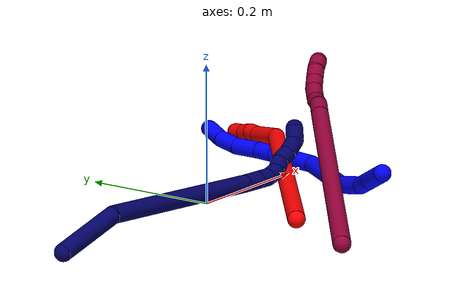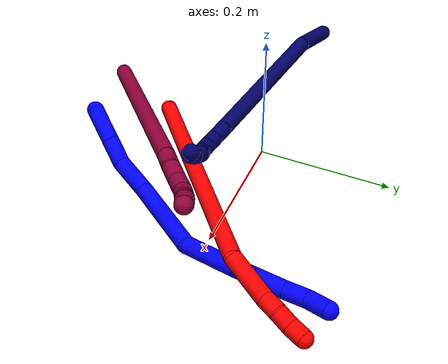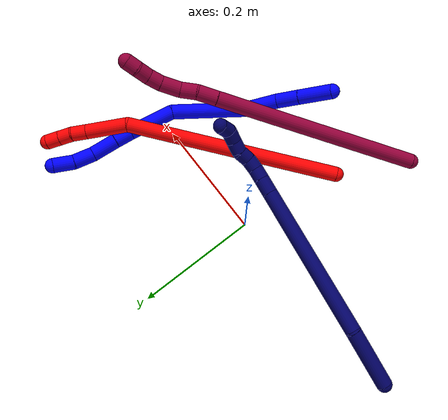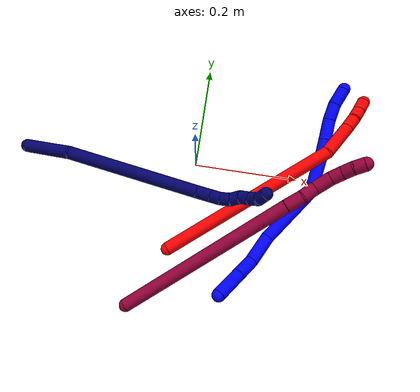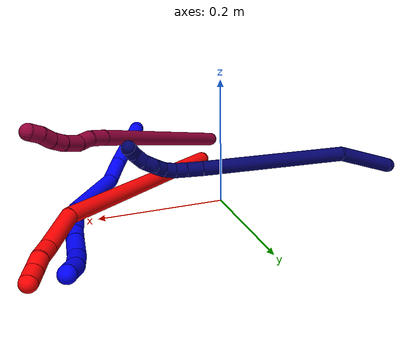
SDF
<sdf version="1.7">
 <world name="default">
  <model name="1">
   <static>0</static>
   <link name="1">
    <collision name="collision-cylinder-e_1_1_4">
     <pose>0.015704 0.009625 0.021722 -0.417123 0.584045 -0.127073</pose>
     <geometry><cylinder><radius>0.0125</radius><length>0.056959</length></cylinder></geometry>
     <surface>
      <friction><ode><mu>1.16</mu><mu2>1.16</mu2><slip1>0</slip1><slip2>0</slip2></ode></friction>
      <contact><ode><kp>1e+06</kp><kd>1</kd><max_vel>0</max_vel><min_depth>0.001</min_depth></ode></contact>
     </surface>
    </collision>
    <visual name="visual-cylinder-e_1_1_4">
     <pose>0.015704 0.009625 0.021722 -0.417123 0.584045 -0.127073</pose>
     <geometry><cylinder><radius>0.0125</radius><length>0.056959</length></cylinder></geometry>
     <material><ambient>0 0 1 1</ambient></material>
    </visual>
    <collision name="collision-cylinder-e_2_4_5">
     <pose>0.042186 0.025967 0.05838 -0.422554 0.582062 -0.128311</pose>
     <geometry><cylinder><radius>0.0125</radius><length>0.039211</length></cylinder></geometry>
     <surface>
      <friction><ode><mu>1.16</mu><mu2>1.16</mu2><slip1>0</slip1><slip2>0</slip2></ode></friction>
      <contact><ode><kp>1e+06</kp><kd>1</kd><max_vel>0</max_vel><min_depth>0.001</min_depth></ode></contact>
     </surface>
    </collision>
    <visual name="visual-cylinder-e_2_4_5">
     <pose>0.042186 0.025967 0.05838 -0.422554 0.582062 -0.128311</pose>
     <geometry><cylinder><radius>0.0125</radius><length>0.039211</length></cylinder></geometry>
     <material><ambient>0 0 1 1</ambient></material>
    </visual>
    <collision name="collision-cylinder-e_3_5_6">
     <pose>0.063417 0.039149 0.09917 -0.245057 0.373808 -0.046568</pose>
     <geometry><cylinder><radius>0.0125</radius><length>0.057253</length></cylinder></geometry>
     <surface>
      <friction><ode><mu>1.16</mu><mu2>1.16</mu2><slip1>0</slip1><slip2>0</slip2></ode></friction>
      <contact><ode><kp>1e+06</kp><kd>1</kd><max_vel>0</max_vel><min_depth>0.001</min_depth></ode></contact>
     </surface>
    </collision>
    <visual name="visual-cylinder-e_3_5_6">
     <pose>0.063417 0.039149 0.09917 -0.245057 0.373808 -0.046568</pose>
     <geometry><cylinder><radius>0.0125</radius><length>0.057253</length></cylinder></geometry>
     <material><ambient>0 0 1 1</ambient></material>
    </visual>
    <collision name="collision-cylinder-e_4_6_7">
     <pose>0.100099 0.043506 0.181559 0.037279 0.434113 0.008222</pose>
     <geometry><cylinder><radius>0.0125</radius><length>0.124719</length></cylinder></geometry>
     <surface>
      <friction><ode><mu>1.16</mu><mu2>1.16</mu2><slip1>0</slip1><slip2>0</slip2></ode></friction>
      <contact><ode><kp>1e+06</kp><kd>1</kd><max_vel>0</max_vel><min_depth>0.001</min_depth></ode></contact>
     </surface>
    </collision>
    <visual name="visual-cylinder-e_4_6_7">
     <pose>0.100099 0.043506 0.181559 0.037279 0.434113 0.008222</pose>
     <geometry><cylinder><radius>0.0125</radius><length>0.124719</length></cylinder></geometry>
     <material><ambient>0 0 1 1</ambient></material>
    </visual>
    <collision name="collision-cylinder-e_5_7_8">
     <pose>0.126458 0.046406 0.277343 -0.126934 0.003301 -0.00021</pose>
     <geometry><cylinder><radius>0.0125</radius><length>0.079133</length></cylinder></geometry>
     <surface>
      <friction><ode><mu>1.16</mu><mu2>1.16</mu2><slip1>0</slip1><slip2>0</slip2></ode></friction>
      <contact><ode><kp>1e+06</kp><kd>1</kd><max_vel>0</max_vel><min_depth>0.001</min_depth></ode></contact>
     </surface>
    </collision>
    <visual name="visual-cylinder-e_5_7_8">
     <pose>0.126458 0.046406 0.277343 -0.126934 0.003301 -0.00021</pose>
     <geometry><cylinder><radius>0.0125</radius><length>0.079133</length></cylinder></geometry>
     <material><ambient>0 0 1 1</ambient></material>
    </visual>
    <collision name="collision-cylinder-e_6_8_9">
     <pose>0.125971 0.053358 0.330858 -0.135357 -0.042856 0.002905</pose>
     <geometry><cylinder><radius>0.0125</radius><length>0.028823</length></cylinder></geometry>
     <surface>
      <friction><ode><mu>1.16</mu><mu2>1.16</mu2><slip1>0</slip1><slip2>0</slip2></ode></friction>
      <contact><ode><kp>1e+06</kp><kd>1</kd><max_vel>0</max_vel><min_depth>0.001</min_depth></ode></contact>
     </surface>
    </collision>
    <visual name="visual-cylinder-e_6_8_9">
     <pose>0.125971 0.053358 0.330858 -0.135357 -0.042856 0.002905</pose>
     <geometry><cylinder><radius>0.0125</radius><length>0.028823</length></cylinder></geometry>
     <material><ambient>0 0 1 1</ambient></material>
    </visual>
    <collision name="collision-cylinder-e_7_9_10">
     <pose>0.124458 0.059384 0.366718 -0.186907 -0.040745 0.003819</pose>
     <geometry><cylinder><radius>0.0125</radius><length>0.04399</length></cylinder></geometry>
     <surface>
      <friction><ode><mu>1.16</mu><mu2>1.16</mu2><slip1>0</slip1><slip2>0</slip2></ode></friction>
      <contact><ode><kp>1e+06</kp><kd>1</kd><max_vel>0</max_vel><min_depth>0.001</min_depth></ode></contact>
     </surface>
    </collision>
    <visual name="visual-cylinder-e_7_9_10">
     <pose>0.124458 0.059384 0.366718 -0.186907 -0.040745 0.003819</pose>
     <geometry><cylinder><radius>0.0125</radius><length>0.04399</length></cylinder></geometry>
     <material><ambient>0 0 1 1</ambient></material>
    </visual>
    <collision name="collision-cylinder-e_8_10_11">
     <pose>0.123182 0.063318 0.405667 0.008663 -0.021902 -9.5e-05</pose>
     <geometry><cylinder><radius>0.0125</radius><length>0.03472</length></cylinder></geometry>
     <surface>
      <friction><ode><mu>1.16</mu><mu2>1.16</mu2><slip1>0</slip1><slip2>0</slip2></ode></friction>
      <contact><ode><kp>1e+06</kp><kd>1</kd><max_vel>0</max_vel><min_depth>0.001</min_depth></ode></contact>
     </surface>
    </collision>
    <visual name="visual-cylinder-e_8_10_11">
     <pose>0.123182 0.063318 0.405667 0.008663 -0.021902 -9.5e-05</pose>
     <geometry><cylinder><radius>0.0125</radius><length>0.03472</length></cylinder></geometry>
     <material><ambient>0 0 1 1</ambient></material>
    </visual>
    <collision name="collision-cylinder-e_9_11_2">
     <pose>0.125063 0.059958 0.440175 0.184983 0.128869 0.01197</pose>
     <geometry><cylinder><radius>0.0125</radius><length>0.035193</length></cylinder></geometry>
     <surface>
      <friction><ode><mu>1.16</mu><mu2>1.16</mu2><slip1>0</slip1><slip2>0</slip2></ode></friction>
      <contact><ode><kp>1e+06</kp><kd>1</kd><max_vel>0</max_vel><min_depth>0.001</min_depth></ode></contact>
     </surface>
    </collision>
    <visual name="visual-cylinder-e_9_11_2">
     <pose>0.125063 0.059958 0.440175 0.184983 0.128869 0.01197</pose>
     <geometry><cylinder><radius>0.0125</radius><length>0.035193</length></cylinder></geometry>
     <material><ambient>0 0 1 1</ambient></material>
    </visual>
    <collision name="collision-sphere-2">
     <pose>0.127324 0.056748 0.457327 0 -0 0</pose>
     <geometry><sphere><radius>0.0125</radius></sphere></geometry>
     <surface>
      <friction><ode><mu>1.16</mu><mu2>1.16</mu2><slip1>0</slip1><slip2>0</slip2></ode></friction>
      <contact><ode><kp>1e+06</kp><kd>1</kd><max_vel>0</max_vel><min_depth>0.001</min_depth></ode></contact>
     </surface>
    </collision>
    <visual name="visual-sphere-2">
     <pose>0.127324 0.056748 0.457327 0 -0 0</pose>
     <geometry><sphere><radius>0.0125</radius></sphere></geometry>
     <material><ambient>0 0 1 1</ambient></material>
    </visual>
    <collision name="collision-sphere-11">
     <pose>0.122802 0.063167 0.423022 0 -0 0</pose>
     <geometry><sphere><radius>0.0125</radius></sphere></geometry>
     <surface>
      <friction><ode><mu>1.16</mu><mu2>1.16</mu2><slip1>0</slip1><slip2>0</slip2></ode></friction>
      <contact><ode><kp>1e+06</kp><kd>1</kd><max_vel>0</max_vel><min_depth>0.001</min_depth></ode></contact>
     </surface>
    </collision>
    <visual name="visual-sphere-11">
     <pose>0.122802 0.063167 0.423022 0 -0 0</pose>
     <geometry><sphere><radius>0.0125</radius></sphere></geometry>
     <material><ambient>0 0 1 1</ambient></material>
    </visual>
    <collision name="collision-sphere-10">
     <pose>0.123562 0.063468 0.388312 0 -0 0</pose>
     <geometry><sphere><radius>0.0125</radius></sphere></geometry>
     <surface>
      <friction><ode><mu>1.16</mu><mu2>1.16</mu2><slip1>0</slip1><slip2>0</slip2></ode></friction>
      <contact><ode><kp>1e+06</kp><kd>1</kd><max_vel>0</max_vel><min_depth>0.001</min_depth></ode></contact>
     </surface>
    </collision>
    <visual name="visual-sphere-10">
     <pose>0.123562 0.063468 0.388312 0 -0 0</pose>
     <geometry><sphere><radius>0.0125</radius></sphere></geometry>
     <material><ambient>0 0 1 1</ambient></material>
    </visual>
    <collision name="collision-sphere-9">
     <pose>0.125354 0.055301 0.345124 0 -0 0</pose>
     <geometry><sphere><radius>0.0125</radius></sphere></geometry>
     <surface>
      <friction><ode><mu>1.16</mu><mu2>1.16</mu2><slip1>0</slip1><slip2>0</slip2></ode></friction>
      <contact><ode><kp>1e+06</kp><kd>1</kd><max_vel>0</max_vel><min_depth>0.001</min_depth></ode></contact>
     </surface>
    </collision>
    <visual name="visual-sphere-9">
     <pose>0.125354 0.055301 0.345124 0 -0 0</pose>
     <geometry><sphere><radius>0.0125</radius></sphere></geometry>
     <material><ambient>0 0 1 1</ambient></material>
    </visual>
    <collision name="collision-sphere-4">
     <pose>0.031407 0.019251 0.043443 0 -0 0</pose>
     <geometry><sphere><radius>0.0125</radius></sphere></geometry>
     <surface>
      <friction><ode><mu>1.16</mu><mu2>1.16</mu2><slip1>0</slip1><slip2>0</slip2></ode></friction>
      <contact><ode><kp>1e+06</kp><kd>1</kd><max_vel>0</max_vel><min_depth>0.001</min_depth></ode></contact>
     </surface>
    </collision>
    <visual name="visual-sphere-4">
     <pose>0.031407 0.019251 0.043443 0 -0 0</pose>
     <geometry><sphere><radius>0.0125</radius></sphere></geometry>
     <material><ambient>0 0 1 1</ambient></material>
    </visual>
    <collision name="collision-sphere-1">
     <geometry><sphere><radius>0.0125</radius></sphere></geometry>
     <surface>
      <friction><ode><mu>1.16</mu><mu2>1.16</mu2><slip1>0</slip1><slip2>0</slip2></ode></friction>
      <contact><ode><kp>1e+06</kp><kd>1</kd><max_vel>0</max_vel><min_depth>0.001</min_depth></ode></contact>
     </surface>
    </collision>
    <visual name="visual-sphere-1">
     <geometry><sphere><radius>0.0125</radius></sphere></geometry>
     <material><ambient>0 0 1 1</ambient></material>
    </visual>
    <collision name="collision-sphere-8">
     <pose>0.126589 0.051415 0.316591 0 -0 0</pose>
     <geometry><sphere><radius>0.0125</radius></sphere></geometry>
     <surface>
      <friction><ode><mu>1.16</mu><mu2>1.16</mu2><slip1>0</slip1><slip2>0</slip2></ode></friction>
      <contact><ode><kp>1e+06</kp><kd>1</kd><max_vel>0</max_vel><min_depth>0.001</min_depth></ode></contact>
     </surface>
    </collision>
    <visual name="visual-sphere-8">
     <pose>0.126589 0.051415 0.316591 0 -0 0</pose>
     <geometry><sphere><radius>0.0125</radius></sphere></geometry>
     <material><ambient>0 0 1 1</ambient></material>
    </visual>
    <collision name="collision-sphere-5">
     <pose>0.052964 0.032683 0.073317 0 -0 0</pose>
     <geometry><sphere><radius>0.0125</radius></sphere></geometry>
     <surface>
      <friction><ode><mu>1.16</mu><mu2>1.16</mu2><slip1>0</slip1><slip2>0</slip2></ode></friction>
      <contact><ode><kp>1e+06</kp><kd>1</kd><max_vel>0</max_vel><min_depth>0.001</min_depth></ode></contact>
     </surface>
    </collision>
    <visual name="visual-sphere-5">
     <pose>0.052964 0.032683 0.073317 0 -0 0</pose>
     <geometry><sphere><radius>0.0125</radius></sphere></geometry>
     <material><ambient>0 0 1 1</ambient></material>
    </visual>
    <collision name="collision-sphere-6">
     <pose>0.07387 0.045614 0.125024 0 -0 0</pose>
     <geometry><sphere><radius>0.0125</radius></sphere></geometry>
     <surface>
      <friction><ode><mu>1.16</mu><mu2>1.16</mu2><slip1>0</slip1><slip2>0</slip2></ode></friction>
      <contact><ode><kp>1e+06</kp><kd>1</kd><max_vel>0</max_vel><min_depth>0.001</min_depth></ode></contact>
     </surface>
    </collision>
    <visual name="visual-sphere-6">
     <pose>0.07387 0.045614 0.125024 0 -0 0</pose>
     <geometry><sphere><radius>0.0125</radius></sphere></geometry>
     <material><ambient>0 0 1 1</ambient></material>
    </visual>
    <collision name="collision-sphere-7">
     <pose>0.126328 0.041397 0.238095 0 -0 0</pose>
     <geometry><sphere><radius>0.0125</radius></sphere></geometry>
     <surface>
      <friction><ode><mu>1.16</mu><mu2>1.16</mu2><slip1>0</slip1><slip2>0</slip2></ode></friction>
      <contact><ode><kp>1e+06</kp><kd>1</kd><max_vel>0</max_vel><min_depth>0.001</min_depth></ode></contact>
     </surface>
    </collision>
    <visual name="visual-sphere-7">
     <pose>0.126328 0.041397 0.238095 0 -0 0</pose>
     <geometry><sphere><radius>0.0125</radius></sphere></geometry>
     <material><ambient>0 0 1 1</ambient></material>
    </visual>
    <inertial>
     <pose>0.092909 0.042729 0.218077 0 -0 0</pose>
     <mass>0.5</mass>
     <inertia>
      <ixx>0.000262</ixx>
      <ixy>0</ixy>
      <ixz>0</ixz>
      <iyy>0.000274</iyy>
      <iyz>0</iyz>
      <izz>-6.8e-05</izz>
     </inertia>
    </inertial>
   </link>
   <pose>0.07838 -0.24171 0.064609 -1.43208 0.371484 -0.157979</pose>
  </model>
  <model name="2">
   <static>0</static>
   <link name="2">
    <collision name="collision-cylinder-e_1_1_4">
     <pose>0.040312 0.00847 0.173857 -0.048679 0.227583 -0.005564</pose>
     <geometry><cylinder><radius>0.0125</radius><length>0.35734</length></cylinder></geometry>
     <surface>
      <friction><ode><mu>1.16</mu><mu2>1.16</mu2><slip1>0</slip1><slip2>0</slip2></ode></friction>
      <contact><ode><kp>1e+06</kp><kd>1</kd><max_vel>0</max_vel><min_depth>0.001</min_depth></ode></contact>
     </surface>
    </collision>
    <visual name="visual-cylinder-e_1_1_4">
     <pose>0.040312 0.00847 0.173857 -0.048679 0.227583 -0.005564</pose>
     <geometry><cylinder><radius>0.0125</radius><length>0.35734</length></cylinder></geometry>
     <material><ambient>1 0 0 1</ambient></material>
    </visual>
    <collision name="collision-cylinder-e_2_4_5">
     <pose>0.077182 0.00923 0.382537 0.21789 -0.096227 -0.010533</pose>
     <geometry><cylinder><radius>0.0125</radius><length>0.071664</length></cylinder></geometry>
     <surface>
      <friction><ode><mu>1.16</mu><mu2>1.16</mu2><slip1>0</slip1><slip2>0</slip2></ode></friction>
      <contact><ode><kp>1e+06</kp><kd>1</kd><max_vel>0</max_vel><min_depth>0.001</min_depth></ode></contact>
     </surface>
    </collision>
    <visual name="visual-cylinder-e_2_4_5">
     <pose>0.077182 0.00923 0.382537 0.21789 -0.096227 -0.010533</pose>
     <geometry><cylinder><radius>0.0125</radius><length>0.071664</length></cylinder></geometry>
     <material><ambient>1 0 0 1</ambient></material>
    </visual>
    <collision name="collision-cylinder-e_3_5_6">
     <pose>0.074032 -0.002139 0.429555 0.29149 0.022977 0.003373</pose>
     <geometry><cylinder><radius>0.0125</radius><length>0.025471</length></cylinder></geometry>
     <surface>
      <friction><ode><mu>1.16</mu><mu2>1.16</mu2><slip1>0</slip1><slip2>0</slip2></ode></friction>
      <contact><ode><kp>1e+06</kp><kd>1</kd><max_vel>0</max_vel><min_depth>0.001</min_depth></ode></contact>
     </surface>
    </collision>
    <visual name="visual-cylinder-e_3_5_6">
     <pose>0.074032 -0.002139 0.429555 0.29149 0.022977 0.003373</pose>
     <geometry><cylinder><radius>0.0125</radius><length>0.025471</length></cylinder></geometry>
     <material><ambient>1 0 0 1</ambient></material>
    </visual>
    <collision name="collision-cylinder-e_4_6_7">
     <pose>0.072033 -0.009091 0.45229 0.302794 -0.204615 -0.031324</pose>
     <geometry><cylinder><radius>0.0125</radius><length>0.022555</length></cylinder></geometry>
     <surface>
      <friction><ode><mu>1.16</mu><mu2>1.16</mu2><slip1>0</slip1><slip2>0</slip2></ode></friction>
      <contact><ode><kp>1e+06</kp><kd>1</kd><max_vel>0</max_vel><min_depth>0.001</min_depth></ode></contact>
     </surface>
    </collision>
    <visual name="visual-cylinder-e_4_6_7">
     <pose>0.072033 -0.009091 0.45229 0.302794 -0.204615 -0.031324</pose>
     <geometry><cylinder><radius>0.0125</radius><length>0.022555</length></cylinder></geometry>
     <material><ambient>1 0 0 1</ambient></material>
    </visual>
    <collision name="collision-cylinder-e_5_7_2">
     <pose>0.068642 -0.01664 0.47344 0.381529 -0.095888 -0.018531</pose>
     <geometry><cylinder><radius>0.0125</radius><length>0.02297</length></cylinder></geometry>
     <surface>
      <friction><ode><mu>1.16</mu><mu2>1.16</mu2><slip1>0</slip1><slip2>0</slip2></ode></friction>
      <contact><ode><kp>1e+06</kp><kd>1</kd><max_vel>0</max_vel><min_depth>0.001</min_depth></ode></contact>
     </surface>
    </collision>
    <visual name="visual-cylinder-e_5_7_2">
     <pose>0.068642 -0.01664 0.47344 0.381529 -0.095888 -0.018531</pose>
     <geometry><cylinder><radius>0.0125</radius><length>0.02297</length></cylinder></geometry>
     <material><ambient>1 0 0 1</ambient></material>
    </visual>
    <collision name="collision-sphere-2">
     <pose>0.067542 -0.020897 0.48405 0 -0 0</pose>
     <geometry><sphere><radius>0.0125</radius></sphere></geometry>
     <surface>
      <friction><ode><mu>1.16</mu><mu2>1.16</mu2><slip1>0</slip1><slip2>0</slip2></ode></friction>
      <contact><ode><kp>1e+06</kp><kd>1</kd><max_vel>0</max_vel><min_depth>0.001</min_depth></ode></contact>
     </surface>
    </collision>
    <visual name="visual-sphere-2">
     <pose>0.067542 -0.020897 0.48405 0 -0 0</pose>
     <geometry><sphere><radius>0.0125</radius></sphere></geometry>
     <material><ambient>1 0 0 1</ambient></material>
    </visual>
    <collision name="collision-sphere-7">
     <pose>0.069741 -0.012384 0.46283 0 -0 0</pose>
     <geometry><sphere><radius>0.0125</radius></sphere></geometry>
     <surface>
      <friction><ode><mu>1.16</mu><mu2>1.16</mu2><slip1>0</slip1><slip2>0</slip2></ode></friction>
      <contact><ode><kp>1e+06</kp><kd>1</kd><max_vel>0</max_vel><min_depth>0.001</min_depth></ode></contact>
     </surface>
    </collision>
    <visual name="visual-sphere-7">
     <pose>0.069741 -0.012384 0.46283 0 -0 0</pose>
     <geometry><sphere><radius>0.0125</radius></sphere></geometry>
     <material><ambient>1 0 0 1</ambient></material>
    </visual>
    <collision name="collision-sphere-6">
     <pose>0.074324 -0.005798 0.44175 0 -0 0</pose>
     <geometry><sphere><radius>0.0125</radius></sphere></geometry>
     <surface>
      <friction><ode><mu>1.16</mu><mu2>1.16</mu2><slip1>0</slip1><slip2>0</slip2></ode></friction>
      <contact><ode><kp>1e+06</kp><kd>1</kd><max_vel>0</max_vel><min_depth>0.001</min_depth></ode></contact>
     </surface>
    </collision>
    <visual name="visual-sphere-6">
     <pose>0.074324 -0.005798 0.44175 0 -0 0</pose>
     <geometry><sphere><radius>0.0125</radius></sphere></geometry>
     <material><ambient>1 0 0 1</ambient></material>
    </visual>
    <collision name="collision-sphere-5">
     <pose>0.073739 0.00152 0.41736 0 -0 0</pose>
     <geometry><sphere><radius>0.0125</radius></sphere></geometry>
     <surface>
      <friction><ode><mu>1.16</mu><mu2>1.16</mu2><slip1>0</slip1><slip2>0</slip2></ode></friction>
      <contact><ode><kp>1e+06</kp><kd>1</kd><max_vel>0</max_vel><min_depth>0.001</min_depth></ode></contact>
     </surface>
    </collision>
    <visual name="visual-sphere-5">
     <pose>0.073739 0.00152 0.41736 0 -0 0</pose>
     <geometry><sphere><radius>0.0125</radius></sphere></geometry>
     <material><ambient>1 0 0 1</ambient></material>
    </visual>
    <collision name="collision-sphere-1">
     <geometry><sphere><radius>0.0125</radius></sphere></geometry>
     <surface>
      <friction><ode><mu>1.16</mu><mu2>1.16</mu2><slip1>0</slip1><slip2>0</slip2></ode></friction>
      <contact><ode><kp>1e+06</kp><kd>1</kd><max_vel>0</max_vel><min_depth>0.001</min_depth></ode></contact>
     </surface>
    </collision>
    <visual name="visual-sphere-1">
     <geometry><sphere><radius>0.0125</radius></sphere></geometry>
     <material><ambient>1 0 0 1</ambient></material>
    </visual>
    <collision name="collision-sphere-4">
     <pose>0.080624 0.01694 0.347713 0 -0 0</pose>
     <geometry><sphere><radius>0.0125</radius></sphere></geometry>
     <surface>
      <friction><ode><mu>1.16</mu><mu2>1.16</mu2><slip1>0</slip1><slip2>0</slip2></ode></friction>
      <contact><ode><kp>1e+06</kp><kd>1</kd><max_vel>0</max_vel><min_depth>0.001</min_depth></ode></contact>
     </surface>
    </collision>
    <visual name="visual-sphere-4">
     <pose>0.080624 0.01694 0.347713 0 -0 0</pose>
     <geometry><sphere><radius>0.0125</radius></sphere></geometry>
     <material><ambient>1 0 0 1</ambient></material>
    </visual>
    <inertial>
     <pose>0.050047 0.006093 0.243115 0 -0 0</pose>
     <mass>0.5</mass>
     <inertia>
      <ixx>0.003741</ixx>
      <ixy>0</ixy>
      <ixz>0</ixz>
      <iyy>0.003828</iyy>
      <iyz>0</iyz>
      <izz>-0.000991</izz>
     </inertia>
    </inertial>
   </link>
   <pose>-0.027661 -0.171915 0.012482 -2.16983 -1.31589 -0.204113</pose>
  </model>
  <model name="7">
   <static>0</static>
   <link name="7">
    <collision name="collision-cylinder-e_1_1_4">
     <pose>0.003359 0.000142 0.049576 -0.002863 0.067657 -9.7e-05</pose>
     <geometry><cylinder><radius>0.0125</radius><length>0.09938</length></cylinder></geometry>
     <surface>
      <friction><ode><mu>1.16</mu><mu2>1.16</mu2><slip1>0</slip1><slip2>0</slip2></ode></friction>
      <contact><ode><kp>1e+06</kp><kd>1</kd><max_vel>0</max_vel><min_depth>0.001</min_depth></ode></contact>
     </surface>
    </collision>
    <visual name="visual-cylinder-e_1_1_4">
     <pose>0.003359 0.000142 0.049576 -0.002863 0.067657 -9.7e-05</pose>
     <geometry><cylinder><radius>0.0125</radius><length>0.09938</length></cylinder></geometry>
     <material><ambient>0.003922 0 0.403922 1</ambient></material>
    </visual>
    <collision name="collision-cylinder-e_2_4_5">
     <pose>0.052987 -0.01912 0.215229 0.16563 0.374582 0.031458</pose>
     <geometry><cylinder><radius>0.0125</radius><length>0.252912</length></cylinder></geometry>
     <surface>
      <friction><ode><mu>1.16</mu><mu2>1.16</mu2><slip1>0</slip1><slip2>0</slip2></ode></friction>
      <contact><ode><kp>1e+06</kp><kd>1</kd><max_vel>0</max_vel><min_depth>0.001</min_depth></ode></contact>
     </surface>
    </collision>
    <visual name="visual-cylinder-e_2_4_5">
     <pose>0.052987 -0.01912 0.215229 0.16563 0.374582 0.031458</pose>
     <geometry><cylinder><radius>0.0125</radius><length>0.252912</length></cylinder></geometry>
     <material><ambient>0.003922 0 0.403922 1</ambient></material>
    </visual>
    <collision name="collision-cylinder-e_3_5_6">
     <pose>0.103848 -0.040384 0.34388 0.146904 0.346751 0.025773</pose>
     <geometry><cylinder><radius>0.0125</radius><length>0.027029</length></cylinder></geometry>
     <surface>
      <friction><ode><mu>1.16</mu><mu2>1.16</mu2><slip1>0</slip1><slip2>0</slip2></ode></friction>
      <contact><ode><kp>1e+06</kp><kd>1</kd><max_vel>0</max_vel><min_depth>0.001</min_depth></ode></contact>
     </surface>
    </collision>
    <visual name="visual-cylinder-e_3_5_6">
     <pose>0.103848 -0.040384 0.34388 0.146904 0.346751 0.025773</pose>
     <geometry><cylinder><radius>0.0125</radius><length>0.027029</length></cylinder></geometry>
     <material><ambient>0.003922 0 0.403922 1</ambient></material>
    </visual>
    <collision name="collision-cylinder-e_4_6_7">
     <pose>0.111802 -0.04361 0.365864 0.144135 0.339718 0.024762</pose>
     <geometry><cylinder><radius>0.0125</radius><length>0.020172</length></cylinder></geometry>
     <surface>
      <friction><ode><mu>1.16</mu><mu2>1.16</mu2><slip1>0</slip1><slip2>0</slip2></ode></friction>
      <contact><ode><kp>1e+06</kp><kd>1</kd><max_vel>0</max_vel><min_depth>0.001</min_depth></ode></contact>
     </surface>
    </collision>
    <visual name="visual-cylinder-e_4_6_7">
     <pose>0.111802 -0.04361 0.365864 0.144135 0.339718 0.024762</pose>
     <geometry><cylinder><radius>0.0125</radius><length>0.020172</length></cylinder></geometry>
     <material><ambient>0.003922 0 0.403922 1</ambient></material>
    </visual>
    <collision name="collision-cylinder-e_5_7_8">
     <pose>0.117003 -0.044241 0.385189 -0.074035 0.183103 -0.0068</pose>
     <geometry><cylinder><radius>0.0125</radius><length>0.020221</length></cylinder></geometry>
     <surface>
      <friction><ode><mu>1.16</mu><mu2>1.16</mu2><slip1>0</slip1><slip2>0</slip2></ode></friction>
      <contact><ode><kp>1e+06</kp><kd>1</kd><max_vel>0</max_vel><min_depth>0.001</min_depth></ode></contact>
     </surface>
    </collision>
    <visual name="visual-cylinder-e_5_7_8">
     <pose>0.117003 -0.044241 0.385189 -0.074035 0.183103 -0.0068</pose>
     <geometry><cylinder><radius>0.0125</radius><length>0.020221</length></cylinder></geometry>
     <material><ambient>0.003922 0 0.403922 1</ambient></material>
    </visual>
    <collision name="collision-cylinder-e_6_8_9">
     <pose>0.118612 -0.039355 0.404218 -0.427277 -0.023181 0.005029</pose>
     <geometry><cylinder><radius>0.0125</radius><length>0.020036</length></cylinder></geometry>
     <surface>
      <friction><ode><mu>1.16</mu><mu2>1.16</mu2><slip1>0</slip1><slip2>0</slip2></ode></friction>
      <contact><ode><kp>1e+06</kp><kd>1</kd><max_vel>0</max_vel><min_depth>0.001</min_depth></ode></contact>
     </surface>
    </collision>
    <visual name="visual-cylinder-e_6_8_9">
     <pose>0.118612 -0.039355 0.404218 -0.427277 -0.023181 0.005029</pose>
     <geometry><cylinder><radius>0.0125</radius><length>0.020036</length></cylinder></geometry>
     <material><ambient>0.003922 0 0.403922 1</ambient></material>
    </visual>
    <collision name="collision-cylinder-e_7_9_10">
     <pose>0.117284 -0.034764 0.423342 -0.043952 -0.108907 0.002396</pose>
     <geometry><cylinder><radius>0.0125</radius><length>0.020155</length></cylinder></geometry>
     <surface>
      <friction><ode><mu>1.16</mu><mu2>1.16</mu2><slip1>0</slip1><slip2>0</slip2></ode></friction>
      <contact><ode><kp>1e+06</kp><kd>1</kd><max_vel>0</max_vel><min_depth>0.001</min_depth></ode></contact>
     </surface>
    </collision>
    <visual name="visual-cylinder-e_7_9_10">
     <pose>0.117284 -0.034764 0.423342 -0.043952 -0.108907 0.002396</pose>
     <geometry><cylinder><radius>0.0125</radius><length>0.020155</length></cylinder></geometry>
     <material><ambient>0.003922 0 0.403922 1</ambient></material>
    </visual>
    <collision name="collision-cylinder-e_8_10_11">
     <pose>0.112675 -0.032872 0.442627 -0.155274 -0.358115 0.028159</pose>
     <geometry><cylinder><radius>0.0125</radius><length>0.020051</length></cylinder></geometry>
     <surface>
      <friction><ode><mu>1.16</mu><mu2>1.16</mu2><slip1>0</slip1><slip2>0</slip2></ode></friction>
      <contact><ode><kp>1e+06</kp><kd>1</kd><max_vel>0</max_vel><min_depth>0.001</min_depth></ode></contact>
     </surface>
    </collision>
    <visual name="visual-cylinder-e_8_10_11">
     <pose>0.112675 -0.032872 0.442627 -0.155274 -0.358115 0.028159</pose>
     <geometry><cylinder><radius>0.0125</radius><length>0.020051</length></cylinder></geometry>
     <material><ambient>0.003922 0 0.403922 1</ambient></material>
    </visual>
    <collision name="collision-cylinder-e_9_11_2">
     <pose>0.105856 -0.025265 0.459088 -0.708372 -0.336133 0.125314</pose>
     <geometry><cylinder><radius>0.0125</radius><length>0.020043</length></cylinder></geometry>
     <surface>
      <friction><ode><mu>1.16</mu><mu2>1.16</mu2><slip1>0</slip1><slip2>0</slip2></ode></friction>
      <contact><ode><kp>1e+06</kp><kd>1</kd><max_vel>0</max_vel><min_depth>0.001</min_depth></ode></contact>
     </surface>
    </collision>
    <visual name="visual-cylinder-e_9_11_2">
     <pose>0.105856 -0.025265 0.459088 -0.708372 -0.336133 0.125314</pose>
     <geometry><cylinder><radius>0.0125</radius><length>0.020043</length></cylinder></geometry>
     <material><ambient>0.003922 0 0.403922 1</ambient></material>
    </visual>
    <collision name="collision-sphere-2">
     <pose>0.10255 -0.01911 0.466272 0 -0 0</pose>
     <geometry><sphere><radius>0.0125</radius></sphere></geometry>
     <surface>
      <friction><ode><mu>1.16</mu><mu2>1.16</mu2><slip1>0</slip1><slip2>0</slip2></ode></friction>
      <contact><ode><kp>1e+06</kp><kd>1</kd><max_vel>0</max_vel><min_depth>0.001</min_depth></ode></contact>
     </surface>
    </collision>
    <visual name="visual-sphere-2">
     <pose>0.10255 -0.01911 0.466272 0 -0 0</pose>
     <geometry><sphere><radius>0.0125</radius></sphere></geometry>
     <material><ambient>0.003922 0 0.403922 1</ambient></material>
    </visual>
    <collision name="collision-sphere-11">
     <pose>0.109161 -0.03142 0.451903 0 -0 0</pose>
     <geometry><sphere><radius>0.0125</radius></sphere></geometry>
     <surface>
      <friction><ode><mu>1.16</mu><mu2>1.16</mu2><slip1>0</slip1><slip2>0</slip2></ode></friction>
      <contact><ode><kp>1e+06</kp><kd>1</kd><max_vel>0</max_vel><min_depth>0.001</min_depth></ode></contact>
     </surface>
    </collision>
    <visual name="visual-sphere-11">
     <pose>0.109161 -0.03142 0.451903 0 -0 0</pose>
     <geometry><sphere><radius>0.0125</radius></sphere></geometry>
     <material><ambient>0.003922 0 0.403922 1</ambient></material>
    </visual>
    <collision name="collision-sphere-10">
     <pose>0.116189 -0.034324 0.43335 0 -0 0</pose>
     <geometry><sphere><radius>0.0125</radius></sphere></geometry>
     <surface>
      <friction><ode><mu>1.16</mu><mu2>1.16</mu2><slip1>0</slip1><slip2>0</slip2></ode></friction>
      <contact><ode><kp>1e+06</kp><kd>1</kd><max_vel>0</max_vel><min_depth>0.001</min_depth></ode></contact>
     </surface>
    </collision>
    <visual name="visual-sphere-10">
     <pose>0.116189 -0.034324 0.43335 0 -0 0</pose>
     <geometry><sphere><radius>0.0125</radius></sphere></geometry>
     <material><ambient>0.003922 0 0.403922 1</ambient></material>
    </visual>
    <collision name="collision-sphere-9">
     <pose>0.11838 -0.035205 0.413334 0 -0 0</pose>
     <geometry><sphere><radius>0.0125</radius></sphere></geometry>
     <surface>
      <friction><ode><mu>1.16</mu><mu2>1.16</mu2><slip1>0</slip1><slip2>0</slip2></ode></friction>
      <contact><ode><kp>1e+06</kp><kd>1</kd><max_vel>0</max_vel><min_depth>0.001</min_depth></ode></contact>
     </surface>
    </collision>
    <visual name="visual-sphere-9">
     <pose>0.11838 -0.035205 0.413334 0 -0 0</pose>
     <geometry><sphere><radius>0.0125</radius></sphere></geometry>
     <material><ambient>0.003922 0 0.403922 1</ambient></material>
    </visual>
    <collision name="collision-sphere-4">
     <pose>0.006719 0.000284 0.099152 0 -0 0</pose>
     <geometry><sphere><radius>0.0125</radius></sphere></geometry>
     <surface>
      <friction><ode><mu>1.16</mu><mu2>1.16</mu2><slip1>0</slip1><slip2>0</slip2></ode></friction>
      <contact><ode><kp>1e+06</kp><kd>1</kd><max_vel>0</max_vel><min_depth>0.001</min_depth></ode></contact>
     </surface>
    </collision>
    <visual name="visual-sphere-4">
     <pose>0.006719 0.000284 0.099152 0 -0 0</pose>
     <geometry><sphere><radius>0.0125</radius></sphere></geometry>
     <material><ambient>0.003922 0 0.403922 1</ambient></material>
    </visual>
    <collision name="collision-sphere-1">
     <geometry><sphere><radius>0.0125</radius></sphere></geometry>
     <surface>
      <friction><ode><mu>1.16</mu><mu2>1.16</mu2><slip1>0</slip1><slip2>0</slip2></ode></friction>
      <contact><ode><kp>1e+06</kp><kd>1</kd><max_vel>0</max_vel><min_depth>0.001</min_depth></ode></contact>
     </surface>
    </collision>
    <visual name="visual-sphere-1">
     <geometry><sphere><radius>0.0125</radius></sphere></geometry>
     <material><ambient>0.003922 0 0.403922 1</ambient></material>
    </visual>
    <collision name="collision-sphere-8">
     <pose>0.118844 -0.043505 0.395103 0 -0 0</pose>
     <geometry><sphere><radius>0.0125</radius></sphere></geometry>
     <surface>
      <friction><ode><mu>1.16</mu><mu2>1.16</mu2><slip1>0</slip1><slip2>0</slip2></ode></friction>
      <contact><ode><kp>1e+06</kp><kd>1</kd><max_vel>0</max_vel><min_depth>0.001</min_depth></ode></contact>
     </surface>
    </collision>
    <visual name="visual-sphere-8">
     <pose>0.118844 -0.043505 0.395103 0 -0 0</pose>
     <geometry><sphere><radius>0.0125</radius></sphere></geometry>
     <material><ambient>0.003922 0 0.403922 1</ambient></material>
    </visual>
    <collision name="collision-sphere-5">
     <pose>0.099255 -0.038523 0.331307 0 -0 0</pose>
     <geometry><sphere><radius>0.0125</radius></sphere></geometry>
     <surface>
      <friction><ode><mu>1.16</mu><mu2>1.16</mu2><slip1>0</slip1><slip2>0</slip2></ode></friction>
      <contact><ode><kp>1e+06</kp><kd>1</kd><max_vel>0</max_vel><min_depth>0.001</min_depth></ode></contact>
     </surface>
    </collision>
    <visual name="visual-sphere-5">
     <pose>0.099255 -0.038523 0.331307 0 -0 0</pose>
     <geometry><sphere><radius>0.0125</radius></sphere></geometry>
     <material><ambient>0.003922 0 0.403922 1</ambient></material>
    </visual>
    <collision name="collision-sphere-6">
     <pose>0.108441 -0.042244 0.356453 0 -0 0</pose>
     <geometry><sphere><radius>0.0125</radius></sphere></geometry>
     <surface>
      <friction><ode><mu>1.16</mu><mu2>1.16</mu2><slip1>0</slip1><slip2>0</slip2></ode></friction>
      <contact><ode><kp>1e+06</kp><kd>1</kd><max_vel>0</max_vel><min_depth>0.001</min_depth></ode></contact>
     </surface>
    </collision>
    <visual name="visual-sphere-6">
     <pose>0.108441 -0.042244 0.356453 0 -0 0</pose>
     <geometry><sphere><radius>0.0125</radius></sphere></geometry>
     <material><ambient>0.003922 0 0.403922 1</ambient></material>
    </visual>
    <collision name="collision-sphere-7">
     <pose>0.115162 -0.044976 0.375275 0 -0 0</pose>
     <geometry><sphere><radius>0.0125</radius></sphere></geometry>
     <surface>
      <friction><ode><mu>1.16</mu><mu2>1.16</mu2><slip1>0</slip1><slip2>0</slip2></ode></friction>
      <contact><ode><kp>1e+06</kp><kd>1</kd><max_vel>0</max_vel><min_depth>0.001</min_depth></ode></contact>
     </surface>
    </collision>
    <visual name="visual-sphere-7">
     <pose>0.115162 -0.044976 0.375275 0 -0 0</pose>
     <geometry><sphere><radius>0.0125</radius></sphere></geometry>
     <material><ambient>0.003922 0 0.403922 1</ambient></material>
    </visual>
    <inertial>
     <pose>0.060569 -0.020684 0.237066 0 -0 0</pose>
     <mass>0.5</mass>
     <inertia>
      <ixx>0.001408</ixx>
      <ixy>0</ixy>
      <ixz>0</ixz>
      <iyy>0.001477</iyy>
      <iyz>0</iyz>
      <izz>-0.00026</izz>
     </inertia>
    </inertial>
   </link>
   <pose>-0.334232 -0.013484 0.012479 0.694305 1.06735 0.637297</pose>
  </model>
  <model name="8">
   <static>0</static>
   <link name="8">
    <collision name="collision-cylinder-e_1_1_4">
     <pose>0.117042 0.114554 0.055918 -1.11668 0.742764 -0.477267</pose>
     <geometry><cylinder><radius>0.0125</radius><length>0.346111</length></cylinder></geometry>
     <surface>
      <friction><ode><mu>1.16</mu><mu2>1.16</mu2><slip1>0</slip1><slip2>0</slip2></ode></friction>
      <contact><ode><kp>1e+06</kp><kd>1</kd><max_vel>0</max_vel><min_depth>0.001</min_depth></ode></contact>
     </surface>
    </collision>
    <visual name="visual-cylinder-e_1_1_4">
     <pose>0.117042 0.114554 0.055918 -1.11668 0.742764 -0.477267</pose>
     <geometry><cylinder><radius>0.0125</radius><length>0.346111</length></cylinder></geometry>
     <material><ambient>0.584314 0 0.227451 1</ambient></material>
    </visual>
    <collision name="collision-cylinder-e_2_4_5">
     <pose>0.245182 0.239813 0.116044 -1.19627 0.767466 -0.536948</pose>
     <geometry><cylinder><radius>0.0125</radius><length>0.031967</length></cylinder></geometry>
     <surface>
      <friction><ode><mu>1.16</mu><mu2>1.16</mu2><slip1>0</slip1><slip2>0</slip2></ode></friction>
      <contact><ode><kp>1e+06</kp><kd>1</kd><max_vel>0</max_vel><min_depth>0.001</min_depth></ode></contact>
     </surface>
    </collision>
    <visual name="visual-cylinder-e_2_4_5">
     <pose>0.245182 0.239813 0.116044 -1.19627 0.767466 -0.536948</pose>
     <geometry><cylinder><radius>0.0125</radius><length>0.031967</length></cylinder></geometry>
     <material><ambient>0.584314 0 0.227451 1</ambient></material>
    </visual>
    <collision name="collision-cylinder-e_3_5_6">
     <pose>0.264398 0.261293 0.121387 -1.46585 0.643093 -0.58266</pose>
     <geometry><cylinder><radius>0.0125</radius><length>0.027078</length></cylinder></geometry>
     <surface>
      <friction><ode><mu>1.16</mu><mu2>1.16</mu2><slip1>0</slip1><slip2>0</slip2></ode></friction>
      <contact><ode><kp>1e+06</kp><kd>1</kd><max_vel>0</max_vel><min_depth>0.001</min_depth></ode></contact>
     </surface>
    </collision>
    <visual name="visual-cylinder-e_3_5_6">
     <pose>0.264398 0.261293 0.121387 -1.46585 0.643093 -0.58266</pose>
     <geometry><cylinder><radius>0.0125</radius><length>0.027078</length></cylinder></geometry>
     <material><ambient>0.584314 0 0.227451 1</ambient></material>
    </visual>
    <collision name="collision-cylinder-e_4_6_7">
     <pose>0.283495 0.282673 0.127804 -1.10875 0.74738 -0.47633</pose>
     <geometry><cylinder><radius>0.0125</radius><length>0.032304</length></cylinder></geometry>
     <surface>
      <friction><ode><mu>1.16</mu><mu2>1.16</mu2><slip1>0</slip1><slip2>0</slip2></ode></friction>
      <contact><ode><kp>1e+06</kp><kd>1</kd><max_vel>0</max_vel><min_depth>0.001</min_depth></ode></contact>
     </surface>
    </collision>
    <visual name="visual-cylinder-e_4_6_7">
     <pose>0.283495 0.282673 0.127804 -1.10875 0.74738 -0.47633</pose>
     <geometry><cylinder><radius>0.0125</radius><length>0.032304</length></cylinder></geometry>
     <material><ambient>0.584314 0 0.227451 1</ambient></material>
    </visual>
    <collision name="collision-cylinder-e_5_7_8">
     <pose>0.302786 0.298755 0.137887 -0.851022 0.851148 -0.40521</pose>
     <geometry><cylinder><radius>0.0125</radius><length>0.022104</length></cylinder></geometry>
     <surface>
      <friction><ode><mu>1.16</mu><mu2>1.16</mu2><slip1>0</slip1><slip2>0</slip2></ode></friction>
      <contact><ode><kp>1e+06</kp><kd>1</kd><max_vel>0</max_vel><min_depth>0.001</min_depth></ode></contact>
     </surface>
    </collision>
    <visual name="visual-cylinder-e_5_7_8">
     <pose>0.302786 0.298755 0.137887 -0.851022 0.851148 -0.40521</pose>
     <geometry><cylinder><radius>0.0125</radius><length>0.022104</length></cylinder></geometry>
     <material><ambient>0.584314 0 0.227451 1</ambient></material>
    </visual>
    <collision name="collision-cylinder-e_6_8_9">
     <pose>0.318552 0.307938 0.148547 -0.564054 0.821711 -0.25113</pose>
     <geometry><cylinder><radius>0.0125</radius><length>0.020358</length></cylinder></geometry>
     <surface>
      <friction><ode><mu>1.16</mu><mu2>1.16</mu2><slip1>0</slip1><slip2>0</slip2></ode></friction>
      <contact><ode><kp>1e+06</kp><kd>1</kd><max_vel>0</max_vel><min_depth>0.001</min_depth></ode></contact>
     </surface>
    </collision>
    <visual name="visual-cylinder-e_6_8_9">
     <pose>0.318552 0.307938 0.148547 -0.564054 0.821711 -0.25113</pose>
     <geometry><cylinder><radius>0.0125</radius><length>0.020358</length></cylinder></geometry>
     <material><ambient>0.584314 0 0.227451 1</ambient></material>
    </visual>
    <collision name="collision-cylinder-e_7_9_2">
     <pose>0.334351 0.315767 0.158167 -0.831053 0.981322 -0.462979</pose>
     <geometry><cylinder><radius>0.0125</radius><length>0.020079</length></cylinder></geometry>
     <surface>
      <friction><ode><mu>1.16</mu><mu2>1.16</mu2><slip1>0</slip1><slip2>0</slip2></ode></friction>
      <contact><ode><kp>1e+06</kp><kd>1</kd><max_vel>0</max_vel><min_depth>0.001</min_depth></ode></contact>
     </surface>
    </collision>
    <visual name="visual-cylinder-e_7_9_2">
     <pose>0.334351 0.315767 0.158167 -0.831053 0.981322 -0.462979</pose>
     <geometry><cylinder><radius>0.0125</radius><length>0.020079</length></cylinder></geometry>
     <material><ambient>0.584314 0 0.227451 1</ambient></material>
    </visual>
    <collision name="collision-sphere-2">
     <pose>0.342696 0.319889 0.161929 0 -0 0</pose>
     <geometry><sphere><radius>0.0125</radius></sphere></geometry>
     <surface>
      <friction><ode><mu>1.16</mu><mu2>1.16</mu2><slip1>0</slip1><slip2>0</slip2></ode></friction>
      <contact><ode><kp>1e+06</kp><kd>1</kd><max_vel>0</max_vel><min_depth>0.001</min_depth></ode></contact>
     </surface>
    </collision>
    <visual name="visual-sphere-2">
     <pose>0.342696 0.319889 0.161929 0 -0 0</pose>
     <geometry><sphere><radius>0.0125</radius></sphere></geometry>
     <material><ambient>0.584314 0 0.227451 1</ambient></material>
    </visual>
    <collision name="collision-sphere-9">
     <pose>0.326006 0.311644 0.154405 0 -0 0</pose>
     <geometry><sphere><radius>0.0125</radius></sphere></geometry>
     <surface>
      <friction><ode><mu>1.16</mu><mu2>1.16</mu2><slip1>0</slip1><slip2>0</slip2></ode></friction>
      <contact><ode><kp>1e+06</kp><kd>1</kd><max_vel>0</max_vel><min_depth>0.001</min_depth></ode></contact>
     </surface>
    </collision>
    <visual name="visual-sphere-9">
     <pose>0.326006 0.311644 0.154405 0 -0 0</pose>
     <geometry><sphere><radius>0.0125</radius></sphere></geometry>
     <material><ambient>0.584314 0 0.227451 1</ambient></material>
    </visual>
    <collision name="collision-sphere-4">
     <pose>0.234084 0.229108 0.111836 0 -0 0</pose>
     <geometry><sphere><radius>0.0125</radius></sphere></geometry>
     <surface>
      <friction><ode><mu>1.16</mu><mu2>1.16</mu2><slip1>0</slip1><slip2>0</slip2></ode></friction>
      <contact><ode><kp>1e+06</kp><kd>1</kd><max_vel>0</max_vel><min_depth>0.001</min_depth></ode></contact>
     </surface>
    </collision>
    <visual name="visual-sphere-4">
     <pose>0.234084 0.229108 0.111836 0 -0 0</pose>
     <geometry><sphere><radius>0.0125</radius></sphere></geometry>
     <material><ambient>0.584314 0 0.227451 1</ambient></material>
    </visual>
    <collision name="collision-sphere-1">
     <geometry><sphere><radius>0.0125</radius></sphere></geometry>
     <surface>
      <friction><ode><mu>1.16</mu><mu2>1.16</mu2><slip1>0</slip1><slip2>0</slip2></ode></friction>
      <contact><ode><kp>1e+06</kp><kd>1</kd><max_vel>0</max_vel><min_depth>0.001</min_depth></ode></contact>
     </surface>
    </collision>
    <visual name="visual-sphere-1">
     <geometry><sphere><radius>0.0125</radius></sphere></geometry>
     <material><ambient>0.584314 0 0.227451 1</ambient></material>
    </visual>
    <collision name="collision-sphere-8">
     <pose>0.311097 0.304233 0.142689 0 -0 0</pose>
     <geometry><sphere><radius>0.0125</radius></sphere></geometry>
     <surface>
      <friction><ode><mu>1.16</mu><mu2>1.16</mu2><slip1>0</slip1><slip2>0</slip2></ode></friction>
      <contact><ode><kp>1e+06</kp><kd>1</kd><max_vel>0</max_vel><min_depth>0.001</min_depth></ode></contact>
     </surface>
    </collision>
    <visual name="visual-sphere-8">
     <pose>0.311097 0.304233 0.142689 0 -0 0</pose>
     <geometry><sphere><radius>0.0125</radius></sphere></geometry>
     <material><ambient>0.584314 0 0.227451 1</ambient></material>
    </visual>
    <collision name="collision-sphere-5">
     <pose>0.256279 0.250518 0.120252 0 -0 0</pose>
     <geometry><sphere><radius>0.0125</radius></sphere></geometry>
     <surface>
      <friction><ode><mu>1.16</mu><mu2>1.16</mu2><slip1>0</slip1><slip2>0</slip2></ode></friction>
      <contact><ode><kp>1e+06</kp><kd>1</kd><max_vel>0</max_vel><min_depth>0.001</min_depth></ode></contact>
     </surface>
    </collision>
    <visual name="visual-sphere-5">
     <pose>0.256279 0.250518 0.120252 0 -0 0</pose>
     <geometry><sphere><radius>0.0125</radius></sphere></geometry>
     <material><ambient>0.584314 0 0.227451 1</ambient></material>
    </visual>
    <collision name="collision-sphere-6">
     <pose>0.272517 0.272068 0.122522 0 -0 0</pose>
     <geometry><sphere><radius>0.0125</radius></sphere></geometry>
     <surface>
      <friction><ode><mu>1.16</mu><mu2>1.16</mu2><slip1>0</slip1><slip2>0</slip2></ode></friction>
      <contact><ode><kp>1e+06</kp><kd>1</kd><max_vel>0</max_vel><min_depth>0.001</min_depth></ode></contact>
     </surface>
    </collision>
    <visual name="visual-sphere-6">
     <pose>0.272517 0.272068 0.122522 0 -0 0</pose>
     <geometry><sphere><radius>0.0125</radius></sphere></geometry>
     <material><ambient>0.584314 0 0.227451 1</ambient></material>
    </visual>
    <collision name="collision-sphere-7">
     <pose>0.294474 0.293277 0.133085 0 -0 0</pose>
     <geometry><sphere><radius>0.0125</radius></sphere></geometry>
     <surface>
      <friction><ode><mu>1.16</mu><mu2>1.16</mu2><slip1>0</slip1><slip2>0</slip2></ode></friction>
      <contact><ode><kp>1e+06</kp><kd>1</kd><max_vel>0</max_vel><min_depth>0.001</min_depth></ode></contact>
     </surface>
    </collision>
    <visual name="visual-sphere-7">
     <pose>0.294474 0.293277 0.133085 0 -0 0</pose>
     <geometry><sphere><radius>0.0125</radius></sphere></geometry>
     <material><ambient>0.584314 0 0.227451 1</ambient></material>
    </visual>
    <inertial>
     <pose>0.169111 0.165468 0.079453 0 -0 0</pose>
     <mass>0.5</mass>
     <inertia>
      <ixx>0.001127</ixx>
      <ixy>0</ixy>
      <ixz>0</ixz>
      <iyy>0.001177</iyy>
      <iyz>0</iyz>
      <izz>-0.00465</izz>
     </inertia>
    </inertial>
   </link>
   <pose>-0.087024 -0.286066 0.011493 -0.236459 -0.170888 -0.158083</pose>
  </model>
 </world>
</sdf>
